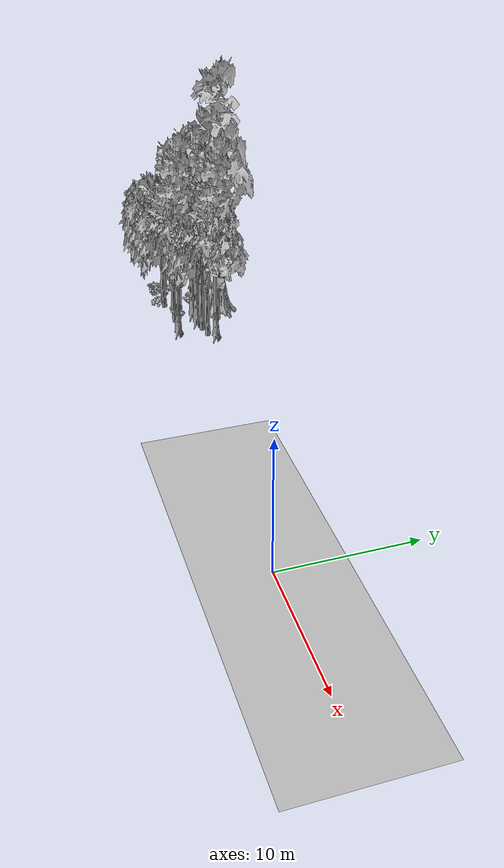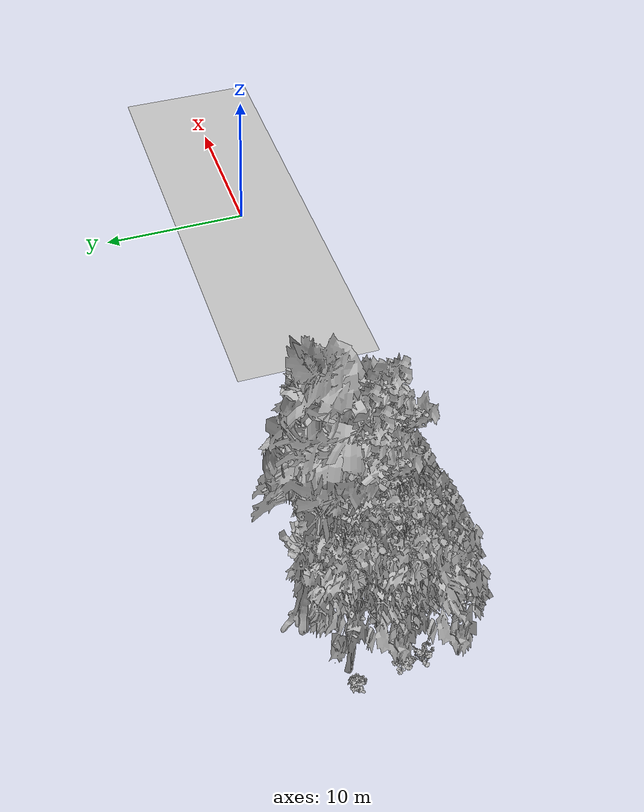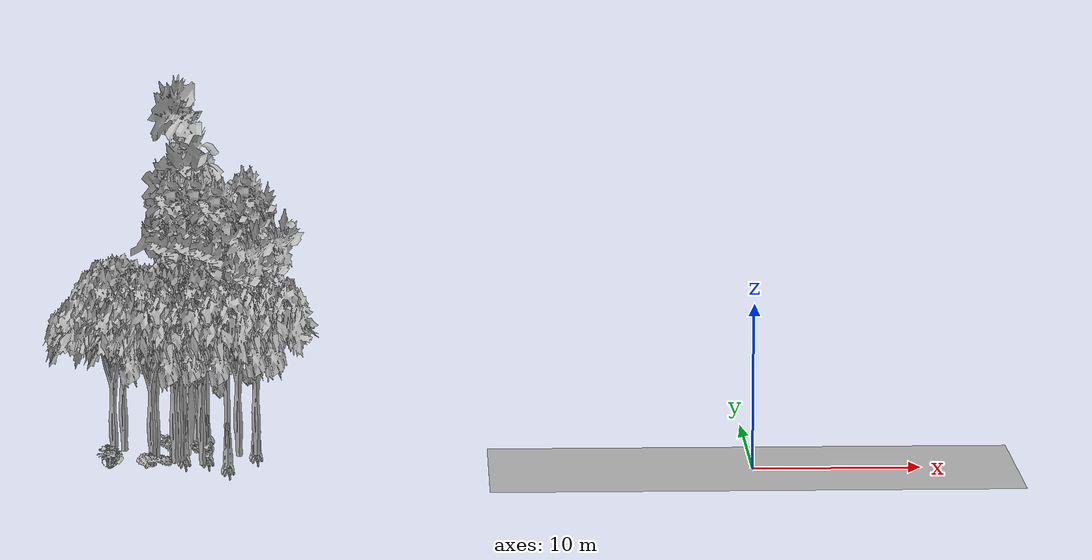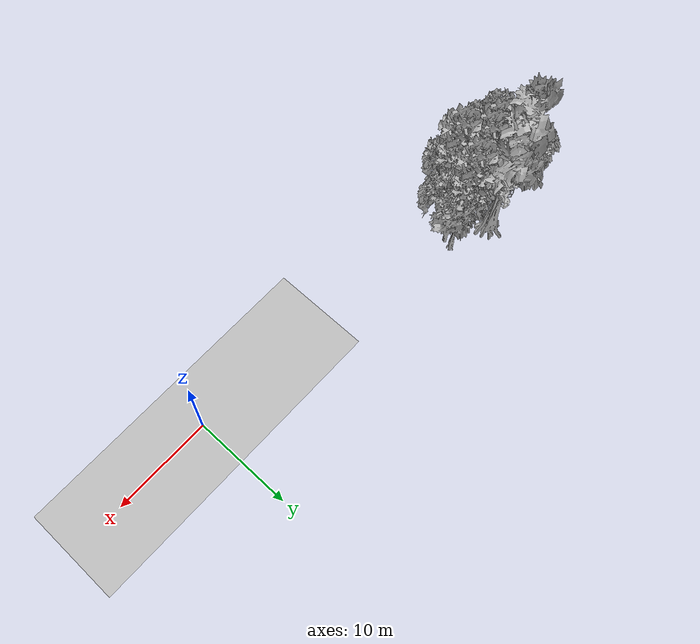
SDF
<sdf version="1.7">
 <world name="default">
  <model name="ground_plane">
   <static>1</static>
   <link name="link">
    <collision name="collision">
     <geometry><plane><normal>0 0 1</normal><size>100 100</size></plane></geometry>
     <surface><contact><ode><min_depth>0.01</min_depth><max_vel>0</max_vel></ode></contact></surface>
    </collision>
    <visual name="grass">
     <cast_shadows>0</cast_shadows>
     <geometry>
      <mesh>
       <scale>0.5814285714285714 0.18142857142857144 0.1</scale>
       <uri>file://grass_plane/meshes/grass_plane.dae</uri>
      </mesh>
     </geometry>
    </visual>
   </link>
  </model>
  <model name="Tree 93">
   <static>1</static>
   <pose>-33.8836994901444 3.6798602663236863 0 1.57079 -0 0</pose>
   <link name="link">
    <collision name="collision">
     <geometry><mesh><scale>3.5 5 3.5</scale><uri>model://tree_9/meshes/tree_9.obj</uri></mesh></geometry>
    </collision>
    <visual name="visual">
     <geometry><mesh><scale>3.5 5 3.5</scale><uri>model://tree_9/meshes/tree_9.obj</uri></mesh></geometry>
    </visual>
   </link>
  </model>
  <model name="Tree 98">
   <static>1</static>
   <pose>-30.683819161885697 3.7149206597720585 0 1.57079 -0 0</pose>
   <link name="link">
    <collision name="collision">
     <geometry><mesh><scale>3.5 5 3.5</scale><uri>model://tree_2/meshes/tree_2.obj</uri></mesh></geometry>
    </collision>
    <visual name="visual">
     <geometry><mesh><scale>3.5 5 3.5</scale><uri>model://tree_2/meshes/tree_2.obj</uri></mesh></geometry>
    </visual>
   </link>
  </model>
  <model name="Tree 106">
   <static>1</static>
   <pose>-31.184434107472146 1.7295231438255847 0 1.57079 -0 0</pose>
   <link name="link">
    <collision name="collision">
     <geometry><mesh><scale>3.5 5 3.5</scale><uri>model://tree_9/meshes/tree_9.obj</uri></mesh></geometry>
    </collision>
    <visual name="visual">
     <geometry><mesh><scale>3.5 5 3.5</scale><uri>model://tree_9/meshes/tree_9.obj</uri></mesh></geometry>
    </visual>
   </link>
  </model>
  <model name="Tree 108">
   <static>1</static>
   <pose>-29.606485154190093 4.683938158201549 0 1.57079 -0 0</pose>
   <link name="link">
    <collision name="collision">
     <geometry><mesh><scale>3.5 5 3.5</scale><uri>model://tree_9/meshes/tree_9.obj</uri></mesh></geometry>
    </collision>
    <visual name="visual">
     <geometry><mesh><scale>3.5 5 3.5</scale><uri>model://tree_9/meshes/tree_9.obj</uri></mesh></geometry>
    </visual>
   </link>
  </model>
  <model name="Tree 179">
   <static>1</static>
   <pose>-34.14655988581383 2.5519602650762856 0 1.57079 -0 0</pose>
   <link name="link">
    <collision name="collision">
     <geometry><mesh><scale>3.5 5 3.5</scale><uri>model://tree_2/meshes/tree_2.obj</uri></mesh></geometry>
    </collision>
    <visual name="visual">
     <geometry><mesh><scale>3.5 5 3.5</scale><uri>model://tree_2/meshes/tree_2.obj</uri></mesh></geometry>
    </visual>
   </link>
  </model>
  <model name="Tree 183">
   <static>1</static>
   <pose>-32.50042490776414 3.7147658396790035 0 1.57079 -0 0</pose>
   <link name="link">
    <collision name="collision">
     <geometry><mesh><scale>3.5 5 3.5</scale><uri>model://tree_9/meshes/tree_9.obj</uri></mesh></geometry>
    </collision>
    <visual name="visual">
     <geometry><mesh><scale>3.5 5 3.5</scale><uri>model://tree_9/meshes/tree_9.obj</uri></mesh></geometry>
    </visual>
   </link>
  </model>
  <model name="Tree 231">
   <static>1</static>
   <pose>-32.784987631691834 1.7807396382111662 0 1.57079 -0 0</pose>
   <link name="link">
    <collision name="collision">
     <geometry><mesh><scale>3.5 5 3.5</scale><uri>model://tree_2/meshes/tree_2.obj</uri></mesh></geometry>
    </collision>
    <visual name="visual">
     <geometry><mesh><scale>3.5 5 3.5</scale><uri>model://tree_2/meshes/tree_2.obj</uri></mesh></geometry>
    </visual>
   </link>
  </model>
  <model name="Tree 262">
   <static>1</static>
   <pose>-33.66971611373366 6.1448501128183075 0 1.57079 -0 0</pose>
   <link name="link">
    <collision name="collision">
     <geometry><mesh><scale>3.5 5 3.5</scale><uri>model://tree_4/meshes/tree_4.obj</uri></mesh></geometry>
    </collision>
    <visual name="visual">
     <geometry><mesh><scale>3.5 5 3.5</scale><uri>model://tree_4/meshes/tree_4.obj</uri></mesh></geometry>
    </visual>
   </link>
  </model>
  <model name="Tree 268">
   <static>1</static>
   <pose>-38.03625390816693 2.1515602937052165 0 1.57079 -0 0</pose>
   <link name="link">
    <collision name="collision">
     <geometry><mesh><scale>3.5 5 3.5</scale><uri>model://tree_2/meshes/tree_2.obj</uri></mesh></geometry>
    </collision>
    <visual name="visual">
     <geometry><mesh><scale>3.5 5 3.5</scale><uri>model://tree_2/meshes/tree_2.obj</uri></mesh></geometry>
    </visual>
   </link>
  </model>
  <model name="Tree 279">
   <static>1</static>
   <pose>-34.439165601707934 2.2267854512184933 0 1.57079 -0 0</pose>
   <link name="link">
    <collision name="collision">
     <geometry><mesh><scale>3.5 5 3.5</scale><uri>model://tree_2/meshes/tree_2.obj</uri></mesh></geometry>
    </collision>
    <visual name="visual">
     <geometry><mesh><scale>3.5 5 3.5</scale><uri>model://tree_2/meshes/tree_2.obj</uri></mesh></geometry>
    </visual>
   </link>
  </model>
  <model name="Tree 284">
   <static>1</static>
   <pose>-29.61132776247879 3.916409912357917 0 1.57079 -0 0</pose>
   <link name="link">
    <collision name="collision">
     <geometry><mesh><scale>3.5 5 3.5</scale><uri>model://tree_2/meshes/tree_2.obj</uri></mesh></geometry>
    </collision>
    <visual name="visual">
     <geometry><mesh><scale>3.5 5 3.5</scale><uri>model://tree_2/meshes/tree_2.obj</uri></mesh></geometry>
    </visual>
   </link>
  </model>
  <model name="Tree 288">
   <static>1</static>
   <pose>-35.73339727842189 1.5197381047349587 0 1.57079 -0 0</pose>
   <link name="link">
    <collision name="collision">
     <geometry><mesh><scale>3.5 5 3.5</scale><uri>model://tree_2/meshes/tree_2.obj</uri></mesh></geometry>
    </collision>
    <visual name="visual">
     <geometry><mesh><scale>3.5 5 3.5</scale><uri>model://tree_2/meshes/tree_2.obj</uri></mesh></geometry>
    </visual>
   </link>
  </model>
  <model name="Tree 430">
   <static>1</static>
   <pose>-37.62966891714467 5.100438753245914 0 1.57079 -0 0</pose>
   <link name="link">
    <collision name="collision">
     <geometry><mesh><scale>3.5 5 3.5</scale><uri>model://tree_2/meshes/tree_2.obj</uri></mesh></geometry>
    </collision>
    <visual name="visual">
     <geometry><mesh><scale>3.5 5 3.5</scale><uri>model://tree_2/meshes/tree_2.obj</uri></mesh></geometry>
    </visual>
   </link>
  </model>
  <model name="Tree 448">
   <static>1</static>
   <pose>-35.54569682444716 2.631093583030623 0 1.57079 -0 0</pose>
   <link name="link">
    <collision name="collision">
     <geometry><mesh><scale>3.5 5 3.5</scale><uri>model://tree_2/meshes/tree_2.obj</uri></mesh></geometry>
    </collision>
    <visual name="visual">
     <geometry><mesh><scale>3.5 5 3.5</scale><uri>model://tree_2/meshes/tree_2.obj</uri></mesh></geometry>
    </visual>
   </link>
  </model>
  <model name="Bush 196">
   <static>1</static>
   <pose>-38.05566966168645 2.264354319895496 0 1.57079 -0 0</pose>
   <link name="link">
    <collision name="collision">
     <geometry><mesh><scale>2 2 2</scale><uri>model://bush_3/meshes/bush_3.obj</uri></mesh></geometry>
     <surface><contact><collide_without_contact>false</collide_without_contact></contact></surface>
    </collision>
    <visual name="visual">
     <geometry><mesh><scale>2 2 2</scale><uri>model://bush_3/meshes/bush_3.obj</uri></mesh></geometry>
    </visual>
   </link>
  </model>
  <model name="Bush 197">
   <static>1</static>
   <pose>-35.016812303119124 2.3638179090336813 0 1.57079 -0 0</pose>
   <link name="link">
    <collision name="collision">
     <geometry><mesh><scale>2 2 2</scale><uri>model://bush_2/meshes/bush_2.obj</uri></mesh></geometry>
     <surface><contact><collide_without_contact>false</collide_without_contact></contact></surface>
    </collision>
    <visual name="visual">
     <geometry><mesh><scale>2 2 2</scale><uri>model://bush_2/meshes/bush_2.obj</uri></mesh></geometry>
    </visual>
   </link>
  </model>
  <model name="Bush 231">
   <static>1</static>
   <pose>-33.425751215310896 5.854661278534309 0 1.57079 -0 0</pose>
   <link name="link">
    <collision name="collision">
     <geometry><mesh><scale>2 2 2</scale><uri>model://bush_2/meshes/bush_2.obj</uri></mesh></geometry>
     <surface><contact><collide_without_contact>false</collide_without_contact></contact></surface>
    </collision>
    <visual name="visual">
     <geometry><mesh><scale>2 2 2</scale><uri>model://bush_2/meshes/bush_2.obj</uri></mesh></geometry>
    </visual>
   </link>
  </model>
  <model name="Bush 248">
   <static>1</static>
   <pose>-35.92692813709317 1.1307907266328314 0 1.57079 -0 0</pose>
   <link name="link">
    <collision name="collision">
     <geometry><mesh><scale>2 2 2</scale><uri>model://bush_3/meshes/bush_3.obj</uri></mesh></geometry>
     <surface><contact><collide_without_contact>false</collide_without_contact></contact></surface>
    </collision>
    <visual name="visual">
     <geometry><mesh><scale>2 2 2</scale><uri>model://bush_3/meshes/bush_3.obj</uri></mesh></geometry>
    </visual>
   </link>
  </model>
  <model name="Bush 279">
   <static>1</static>
   <pose>-38.456772917696114 4.917863845156205 0 1.57079 -0 0</pose>
   <link name="link">
    <collision name="collision">
     <geometry><mesh><scale>2 2 2</scale><uri>model://bush_2/meshes/bush_2.obj</uri></mesh></geometry>
     <surface><contact><collide_without_contact>false</collide_without_contact></contact></surface>
    </collision>
    <visual name="visual">
     <geometry><mesh><scale>2 2 2</scale><uri>model://bush_2/meshes/bush_2.obj</uri></mesh></geometry>
    </visual>
   </link>
  </model>
  <model name="Bush 292">
   <static>1</static>
   <pose>-38.16197603679377 1.0766715474867752 0 1.57079 -0 0</pose>
   <link name="link">
    <collision name="collision">
     <geometry><mesh><scale>2 2 2</scale><uri>model://bush_4/meshes/bush_4.obj</uri></mesh></geometry>
     <surface><contact><collide_without_contact>false</collide_without_contact></contact></surface>
    </collision>
    <visual name="visual">
     <geometry><mesh><scale>2 2 2</scale><uri>model://bush_4/meshes/bush_4.obj</uri></mesh></geometry>
    </visual>
   </link>
  </model>
  <model name="Bush 328">
   <static>1</static>
   <pose>-34.69431313310223 3.7002554249253734 0 1.57079 -0 0</pose>
   <link name="link">
    <collision name="collision">
     <geometry><mesh><scale>2 2 2</scale><uri>model://bush_0/meshes/bush_0.obj</uri></mesh></geometry>
     <surface><contact><collide_without_contact>false</collide_without_contact></contact></surface>
    </collision>
    <visual name="visual">
     <geometry><mesh><scale>2 2 2</scale><uri>model://bush_0/meshes/bush_0.obj</uri></mesh></geometry>
    </visual>
   </link>
  </model>
  <model name="Bush 336">
   <static>1</static>
   <pose>-32.60088745239587 2.1494042970931595 0 1.57079 -0 0</pose>
   <link name="link">
    <collision name="collision">
     <geometry><mesh><scale>2 2 2</scale><uri>model://bush_0/meshes/bush_0.obj</uri></mesh></geometry>
     <surface><contact><collide_without_contact>false</collide_without_contact></contact></surface>
    </collision>
    <visual name="visual">
     <geometry><mesh><scale>2 2 2</scale><uri>model://bush_0/meshes/bush_0.obj</uri></mesh></geometry>
    </visual>
   </link>
  </model>
 </world>
</sdf>
